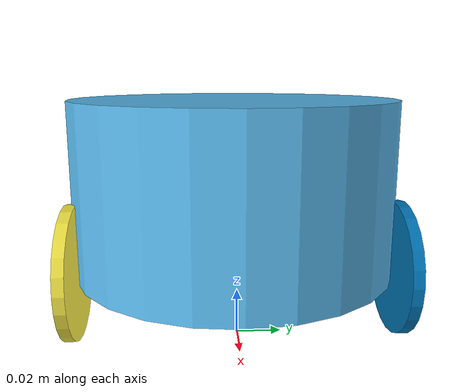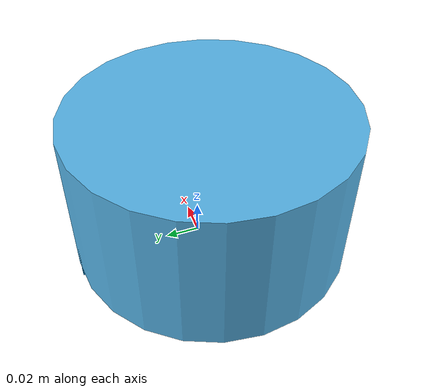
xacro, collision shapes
<?xml version="1.0"?>
<robot name="lightrover" xmlns:xacro="http://ros.org/wiki/xacro">

  <xacro:include filename="$(find lightrover_description)/urdf/common.xacro"/>
  <xacro:include filename="$(find lightrover_description)/urdf/base/base_urdf.xacro"/>
  <xacro:include filename="$(find lightrover_description)/urdf/caster/caster_urdf.xacro"/>
  <xacro:include filename="$(find lightrover_description)/urdf/wheel/wheel_urdf.xacro"/>
  <xacro:include filename="$(find lightrover_description)/urdf/lidar/lidar_urdf.xacro"/>
  <xacro:include filename="$(find lightrover_description)/urdf/ros2_control.xacro"/>

  <!-- =============== Link & Joint =============== -->
  <!-- Base -->
  <link name="base_footprint"/>
  <xacro:base parent="base_footprint">
    <origin xyz="0 0 0.024"/>
  </xacro:base>

  <!-- Caster -->
  <xacro:caster parent="base_link">
    <origin xyz="-0.078 0 -0.014"/>
  </xacro:caster>

  <!-- Wheel -->
  <!-- Right Wheel -->
  <xacro:wheel prefix="right" parent="base_link">
    <origin xyz="0 -0.072 0.006"/>
    <axis xyz="0 1 0"/>
  </xacro:wheel>
  <!-- Left Wheel -->
  <xacro:wheel prefix="left" parent="base_link">
    <origin xyz="0 0.072 0.006" rpy="0 0 ${M_PI}"/>
    <axis xyz="0 -1 0"/>
  </xacro:wheel>

  <!-- Sensors -->
  <!-- Lidar -->
  <xacro:lidar prefix="center" parent="base_link">
    <origin xyz="-0.07 0 0.086" rpy="0 0 -1.5708"/>
  </xacro:lidar>

  <!-- =============== ros2_control (Gazebo Harmonic) =============== -->
  <xacro:lightrover_ros2_control/>

  <!-- =============== Gazebo =============== -->
  <!-- Base -->
  <xacro:base_gazebo/>

  <!-- Caster -->
  <xacro:caster_gazebo/>

  <!-- Wheel -->
  <xacro:wheel_gazebo prefix="right"/>
  <xacro:wheel_gazebo prefix="left"/>

  <!-- LiDAR -->
  <xacro:lidar_gazebo prefix="center"
                      min_rad="-${M_PI}" max_rad="${M_PI}"
                      min_range="0.10" max_range="8.0"/>

</robot>

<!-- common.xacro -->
<robot xmlns:xacro="http://ros.org/wiki/xacro">
  <property name="M_PI" value="3.14159274"/>

</robot>

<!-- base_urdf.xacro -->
<robot xmlns:xacro="http://ros.org/wiki/xacro">

  <xacro:include filename="$(find lightrover_description)/urdf/base/base_gazebo.xacro"/>

  <!--
    base_link は車輪2個を除いた車体全体(シャーシ・モーター・バッテリー・基板・LiDAR)。
    実機総質量 0.516 kg から車輪 2 x 0.0135 kg とキャスター 0.005 kg を引いた値。
    ROS1版は Gazebo(ODE)での動作安定化のため 0.002 kg に、車輪は 2.0 kg にしていた。
  -->
  <xacro:property name="base_mass" value="0.484"/>

  <xacro:macro name="base" params="parent *joint_origin">
    <joint name="base_joint" type="fixed">
      <xacro:insert_block name="joint_origin"/>
      <parent link="${parent}"/>
      <child link="base_link"/>
    </joint>

    <link name="base_link">
      <visual>
        <geometry>
          <mesh filename="package://lightrover_description/meshes/base_link.dae"/>
        </geometry>
      </visual>
      <collision>
        <origin xyz="-0.025 0.0 0.04" rpy="0.0 0.0 0.0"/>
        <geometry>
          <cylinder radius="0.075" length="0.08"/>
        </geometry>
      </collision>
      <inertial>
        <origin xyz="-0.025 0.0 0.024" rpy="0.0 0.0 0.0"/>
        <mass value="${base_mass}"/>
        <inertia ixx="8.0206480e-4" ixy="3.2953465e-5" ixz="3.1434721e-5"
                 iyy="9.0126446e-4" iyz="-1.2433875e-4"
                 izz="6.4944281e-4"/>
      </inertial>
    </link>
  </xacro:macro>

</robot>

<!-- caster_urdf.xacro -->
<robot xmlns:xacro="http://ros.org/wiki/xacro">

  <xacro:include filename="$(find lightrover_description)/urdf/caster/caster_gazebo.xacro"/>

  <!--
    キャスターは摩擦0の球で近似した接地点。見た目は base_link のメッシュに含まれる。
    質量はボールキャスター相当の 0.005 kg (ROS1版は 0.05 kg)。
  -->
  <xacro:property name="caster_radius" value="0.01"/>
  <xacro:property name="caster_mass" value="0.005"/>

  <xacro:macro name="caster" params="parent *joint_origin">
    <joint name="caster_joint" type="fixed">
      <xacro:insert_block name="joint_origin"/>
      <parent link="${parent}"/>
      <child link="caster_link"/>
    </joint>

    <link name="caster_link">
      <collision>
        <geometry>
          <sphere radius="${caster_radius}"/>
        </geometry>
      </collision>
      <inertial>
        <origin xyz="0.0 0.0 0.0" rpy="0.0 0.0 0.0"/>
        <mass value="${caster_mass}"/>
        <inertia ixx="${2.0/5.0*caster_mass*caster_radius*caster_radius}" ixy="0.0" ixz="0.0"
                 iyy="${2.0/5.0*caster_mass*caster_radius*caster_radius}" iyz="0.0"
                 izz="${2.0/5.0*caster_mass*caster_radius*caster_radius}"/>
      </inertial>
    </link>
  </xacro:macro>

</robot>

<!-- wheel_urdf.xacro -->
<robot xmlns:xacro="http://ros.org/wiki/xacro">

  <xacro:include filename="$(find lightrover_description)/urdf/common.xacro"/>
  <xacro:include filename="$(find lightrover_description)/urdf/wheel/wheel_gazebo.xacro"/>

  <xacro:property name="wheel_radius" value="0.03"/>
  <xacro:property name="wheel_length" value="0.005"/>
  <!-- 実機の車輪1個あたりの質量 [kg] -->
  <xacro:property name="wheel_mass" value="0.0135"/>

  <xacro:macro name="wheel" params="prefix parent *origin *axis">
    <joint name="${prefix}_wheel_joint" type="continuous">
      <xacro:insert_block name="origin"/>
      <xacro:insert_block name="axis"/>
      <parent link="${parent}"/>
      <child link="${prefix}_wheel_link"/>
      <dynamics damping="0.0" friction="0.0"/>
    </joint>

    <link name="${prefix}_wheel_link">
      <visual>
        <geometry>
          <mesh filename="package://lightrover_description/meshes/wheel.dae"/>
        </geometry>
      </visual>
      <collision>
        <origin xyz="0 0 0" rpy="-${M_PI/2} 0 0"/>
        <geometry>
          <cylinder radius="${wheel_radius}" length="${wheel_length}"/>
        </geometry>
      </collision>
      <!--
        慣性はCAD値。回転軸(リンク座標のy軸)に軸方向の値 7.02e-6 が乗るように並べ直した。
        (ROS1版は origin の rpy="-pi/2 0 0" で軸方向の値がx軸に乗っていた)
      -->
      <inertial>
        <origin xyz="0 0 0" rpy="0 0 0"/>
        <mass value="${wheel_mass}"/>
        <inertia ixx="3.5665783e-6" ixy="0.0" ixz="0.0"
                 iyy="7.0238032e-6" iyz="0.0"
                 izz="3.5673196e-6"/>
      </inertial>
    </link>
  </xacro:macro>

</robot>

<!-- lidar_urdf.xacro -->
<robot xmlns:xacro="http://ros.org/wiki/xacro">

  <xacro:include filename="$(find lightrover_description)/urdf/common.xacro"/>
  <xacro:include filename="$(find lightrover_description)/urdf/lidar/lidar_gazebo.xacro"/>

  <xacro:macro name="lidar" params="prefix parent *joint_origin">
		<joint name="${prefix}_lidar_joint" type="fixed">
	  	<xacro:insert_block name="joint_origin"/>
	  	<parent link="${parent}"/>
	  	<child link="lidar_link"/>
		</joint>

		<link name="lidar_link"/>

  </xacro:macro>

</robot>
